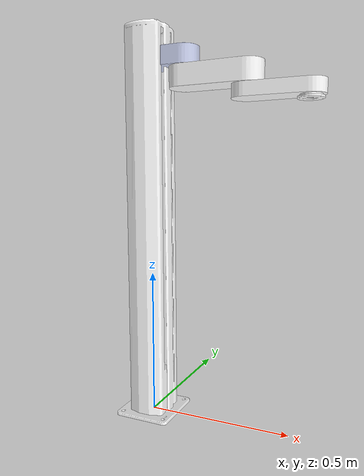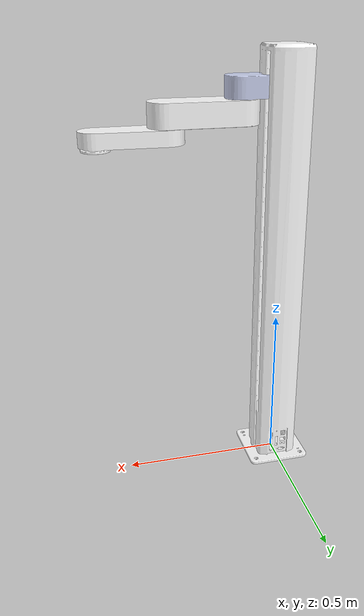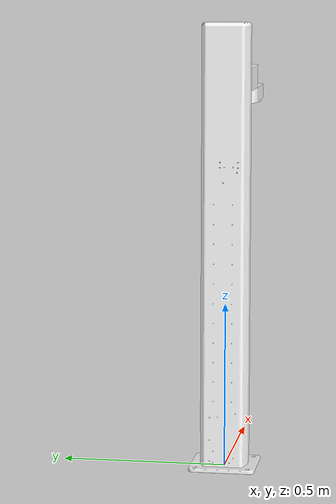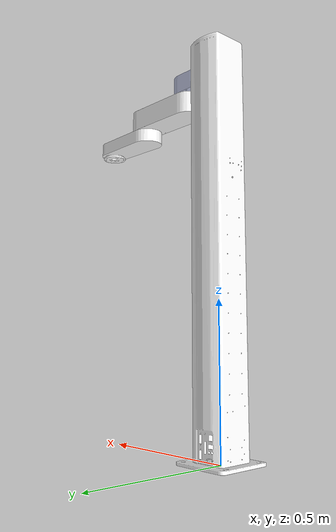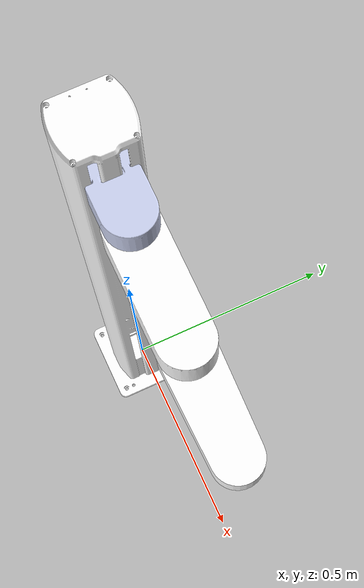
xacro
<?xml version="1.0"?>
<robot name="hitbot" xmlns:xacro="http://ros.org/wiki/xacro">

  <!-- xacro argument -->
  <xacro:arg name="use_nominal_extrinsics" default="true"/>

  <!-- xacro include -->
  <xacro:include filename="$(find hitbot_sim)/urdf/Z-Arm_10042C0.urdf.xacro" />

  <!-- Mani Base -->
  <xacro:Z-Arm_10042C0/>

</robot>

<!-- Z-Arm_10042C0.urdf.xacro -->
<robot name="Z-Arm_10042C0" xmlns:xacro="http://ros.org/wiki/xacro">

  <xacro:macro name="Z-Arm_10042C0">
  <xacro:include filename="$(find hitbot_sim)/config/macro.gazebo.xacro" />
	<xacro:include filename="$(find hitbot_sim)/config/macro.transmission.xacro" />

    <link name="world"/>

    <link name="base_link">
      <inertial>
        <origin rpy="0 0 0" xyz="-0.0152493195612961 -0.000340773146600589 0.627217436393109"/>
        <mass value="12.1147491899625"/>
        <inertia ixx="1.57331650738548" ixy="0.00013876928001303" ixz="-0.00142621285833315" iyy="1.56540260130721" iyz="-0.00396786578401927" izz="0.0545129495020593"/>
      </inertial>

      <visual>
        <origin rpy="0 0 0" xyz="0 0 0"/>
        <geometry>
          <mesh filename="file://$(find hitbot_sim)/meshes/Z-Arm_10042C0/base_link.dae"/>
        </geometry>
        <material name="">
          <color rgba="1 1 1 1"/>
        </material>
      </visual>

      <collision>
        <origin rpy="0 0 0" xyz="0 0 0"/>
        <geometry>
          <mesh filename="file://$(find hitbot_sim)/meshes/Z-Arm_10042C0/base_link.dae"/>
        </geometry>
      </collision>
    </link>

    <joint name="base_joint" type="fixed">
      <parent link="world"/>
      <child link="base_link"/>
      <origin rpy="-1.5708 0 0" xyz="0 0 0"/>
    </joint>

    <link name="link1">
      <inertial>
        <origin rpy="0 0 0" xyz="0.0814844684502057 -0.000148613714255294 0.0317838791707967"/>
        <mass value="0.993699801386025"/>
        <inertia ixx="0.000950142292489542" ixy="-1.44578489991647E-05" ixz="7.33036655063474E-05" iyy="0.0034290254131011" iyz="-2.09106228762866E-06" izz="0.00392515031508005"/>
      </inertial>
      <visual>
        <origin rpy="0 0 0" xyz="0 0 0"/>
        <geometry>
          <mesh filename="file://$(find hitbot_sim)/meshes/Z-Arm_10042C0/link1.dae"/>
        </geometry>
        <material name="">
          <color rgba="0.792156862745098 0.819607843137255 0.933333333333333 1"/>
        </material>
      </visual>
      <collision>
        <origin rpy="0 0 0" xyz="0 0 0"/>
        <geometry>
          <mesh filename="file://$(find hitbot_sim)/meshes/Z-Arm_10042C0/link1.dae"/>
        </geometry>
      </collision>
    </link>

    <joint name="joint1" type="prismatic">
      <origin rpy="1.5708 0 0" xyz="0 -1.2 0"/>
      <parent link="base_link"/>
      <child link="link1"/>
      <axis xyz="0 0 1"/>
      <limit effort="300" lower="-0.95" upper="0" velocity="7"/>
      <dynamics friction="10" />
    </joint>

    <link name="link2">
      <inertial>
        <origin rpy="0 0 0" xyz="0.111045959309931 2.43604684770394E-05 -0.0314379854113542"/>
        <mass value="5.85844227294122"/>
        <inertia ixx="0.00708782289991147" ixy="7.1034720884927E-06" ixz="0.000255328408086295" iyy="0.0470616581346809" iyz="3.5236472788361E-07" izz="0.0503399714879645"/>
      </inertial>
      <visual>
        <origin rpy="0 0 0" xyz="0 0 0"/>
        <geometry>
          <mesh filename="file://$(find hitbot_sim)/meshes/Z-Arm_10042C0/link2.dae"/>
        </geometry>
        <material name="">
          <color rgba="1 1 1 1"/>
        </material>
      </visual>
      <collision>
        <origin rpy="0 0 0" xyz="0 0 0"/>
        <geometry>
          <mesh filename="file://$(find hitbot_sim)/meshes/Z-Arm_10042C0/link2.dae"/>
        </geometry>
      </collision>
    </link>

    <joint name="joint2" type="revolute">
      <origin rpy="0 0 0" xyz="0.133 0 0"/>
      <parent link="link1"/>
      <child link="link2"/>
      <axis xyz="0 0 1"/>
      <limit effort="50" lower="-1.571" upper="1.571" velocity="1.571"/>
      <dynamics friction="0" />
    </joint>

    <link name="link3">
      <inertial>
        <origin rpy="0 0 0" xyz="0.0953068068304957 1.45953948384313E-13 -0.0226655447402296"/>
        <mass value="3.43252725336984"/>
        <inertia ixx="0.00328366639192851" ixy="-1.56304791044749E-14" ixz="5.94905284720721E-05" iyy="0.0233302625835159" iyz="1.47845983740584E-16" izz="0.0254348240065591"/>
      </inertial>
      <visual>
        <origin rpy="0 0 0" xyz="0 0 0"/>
        <geometry>
          <mesh filename="file://$(find hitbot_sim)/meshes/Z-Arm_10042C0/link3.dae"/>
        </geometry>
        <material name="">
          <color rgba="1 1 1 1"/>
        </material>
      </visual>
      <collision>
        <origin rpy="0 0 0" xyz="0 0 0"/>
        <geometry>
          <mesh filename="file://$(find hitbot_sim)/meshes/Z-Arm_10042C0/link3.dae"/>
        </geometry>
      </collision>
    </link>

    <joint name="joint3" type="revolute">
      <origin rpy="0 0 0" xyz="0.22 0 -0.06799"/>
      <parent link="link2"/>
      <child link="link3"/>
      <axis xyz="0 0 1"/>
			<limit effort="50" lower="-6.2832" upper="6.2832" velocity="6.2832"/>
			<dynamics friction="0" />
    </joint>

    <link name="link4">
      <inertial>
        <origin rpy="0 0 0" xyz="-0.000247759291386207 -7.08258575587396E-12 -0.0209527102025886"/>
        <mass value="0.120587662892703"/>
        <inertia ixx="5.0401439482025E-05" ixy="1.41751614431463E-14" ixz="-1.42422376690236E-07" iyy="5.01231671450723E-05" iyz="8.96921067460828E-15" izz="8.90018861873181E-05"/>
      </inertial>
      <visual>
        <origin rpy="0 0 0" xyz="0 0 0"/>
        <geometry>
          <mesh filename="file://$(find hitbot_sim)/meshes/Z-Arm_10042C0/link4.dae"/>
        </geometry>
        <material name="">
          <color rgba="1 1 1 1"/>
        </material>
      </visual>
      <collision>
        <origin rpy="0 0 0" xyz="0 0 0"/>
        <geometry>
          <mesh filename="file://$(find hitbot_sim)/meshes/Z-Arm_10042C0/link4.dae"/>
        </geometry>
      </collision>
    </link>

    <joint name="joint4" type="revolute">
      <origin rpy="0 0 3.1416" xyz="0.2 0 -0.0284"/>
      <parent link="link3"/>
      <child link="link4"/>
      <axis xyz="0 0 1"/>
			<limit effort="50" lower="-6.2832" upper="6.2832" velocity="6.2832"/>
			<dynamics friction="0" />
    </joint>

		<xacro:hitbot_transmission />
		<xacro:hitbot_gazebo namespace="" />
  </xacro:macro>
</robot>
